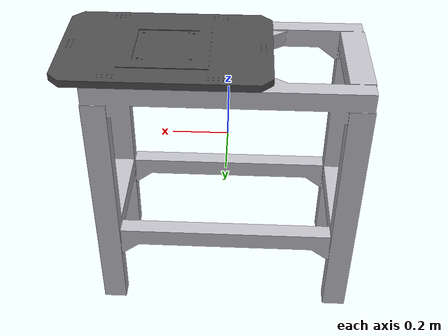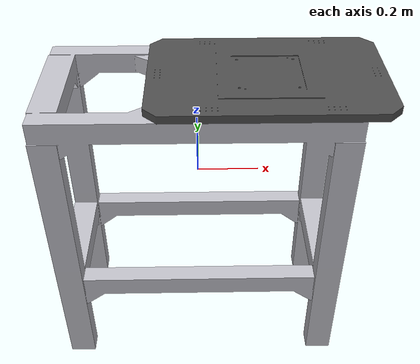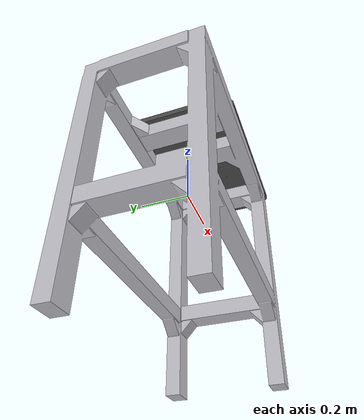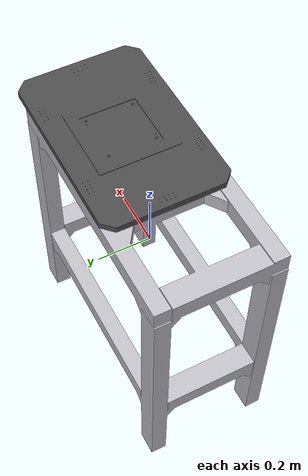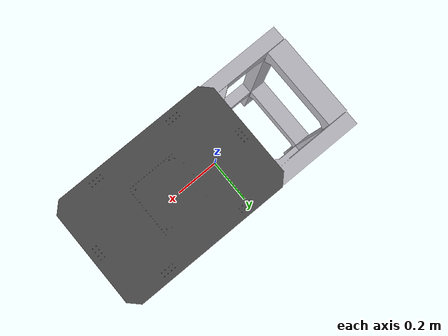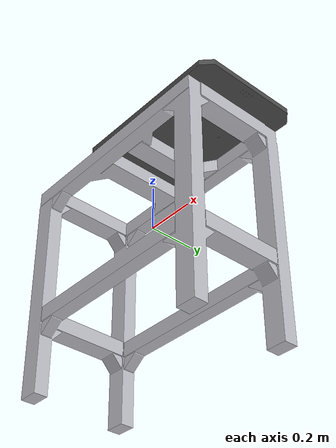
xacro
<?xml version="1.0" ?>
<robot name="env" xmlns:xacro="http://www.ros.org/wiki/xacro" >

  <link name="pieds_table_link">
    <visual>
      <origin rpy="0 0 0" xyz="0 0 0"/>
      <geometry>
        <mesh filename="package://kuka_kr6_700sixx_moveit/meshes/env/pieds_table.stl" scale="1 1 1"/>
      </geometry>
      <material name="silver"/>
    </visual>
    <collision>
      <origin rpy="0 0 0" xyz="0 0 0"/>
      <geometry>
        <mesh filename="package://kuka_kr6_700sixx_moveit/meshes/env/pieds_table.stl" scale="1 1 1"/>
      </geometry>
    </collision>
  </link>
    <link name="plateau_table_link">
    <visual>
      <origin rpy="0 0 0" xyz="0 0 0"/>
      <geometry>
        <mesh filename="package://kuka_kr6_700sixx_moveit/meshes/env/plateau_table_kuka.stl" scale="1 1 1"/>
      </geometry>
      <material name="dark_gray"/>
    </visual>
    <collision>
      <origin rpy="0 0 0" xyz="0 0 0"/>
      <geometry>
        <mesh filename="package://kuka_kr6_700sixx_moveit/meshes/env/plateau_table_kuka.stl" scale="1 1 1"/>
      </geometry>
    </collision>
  </link>

  <joint name="pieds_plateau_table" type="fixed">
    <origin rpy="1.57079 0 0" xyz="0.21 0 0.343" />
    <parent link="pieds_table_link" />
    <child link="plateau_table_link" />
  </joint>

</robot>
